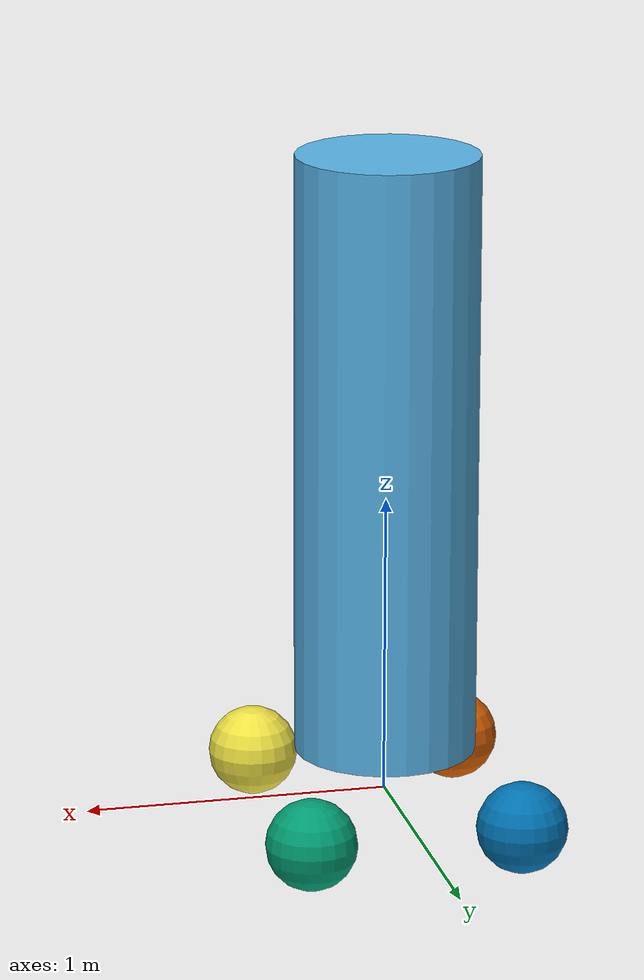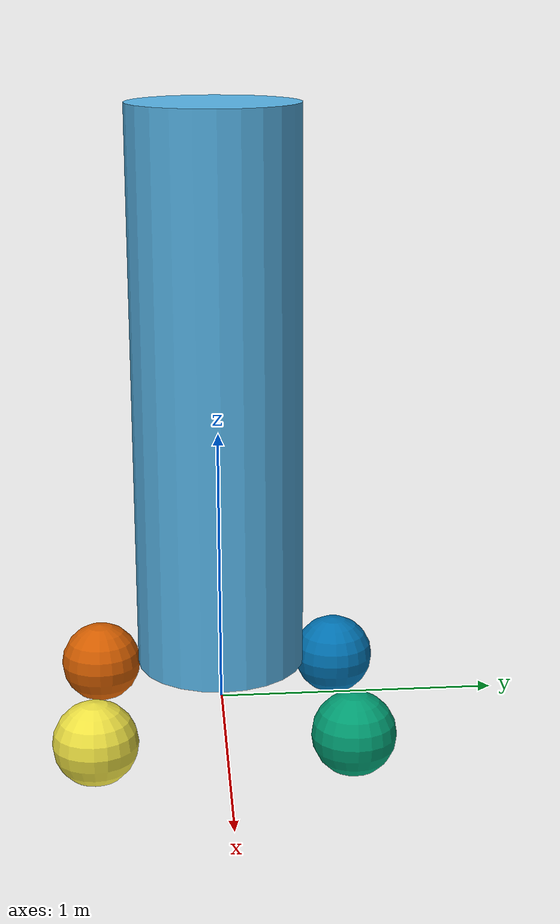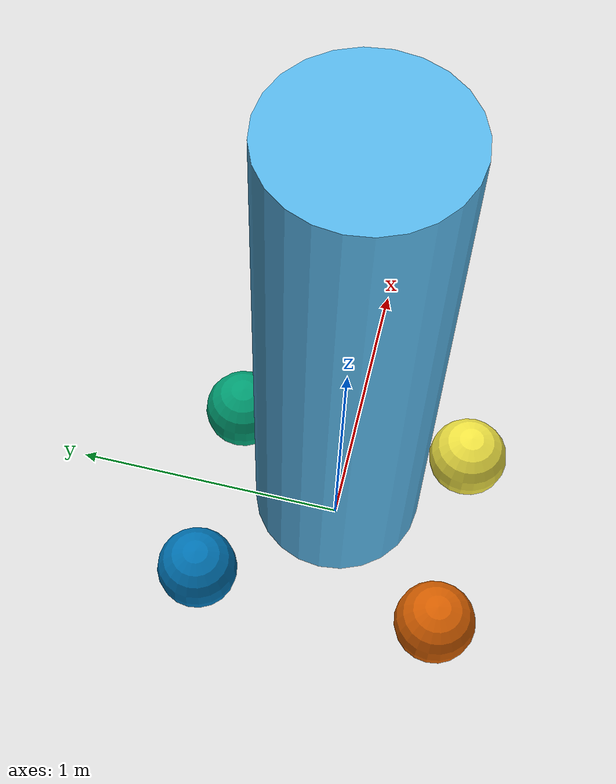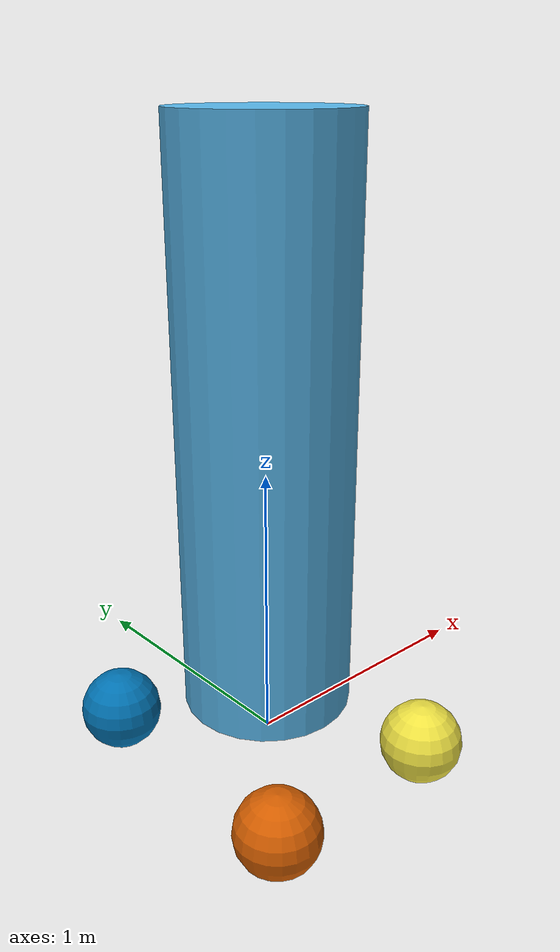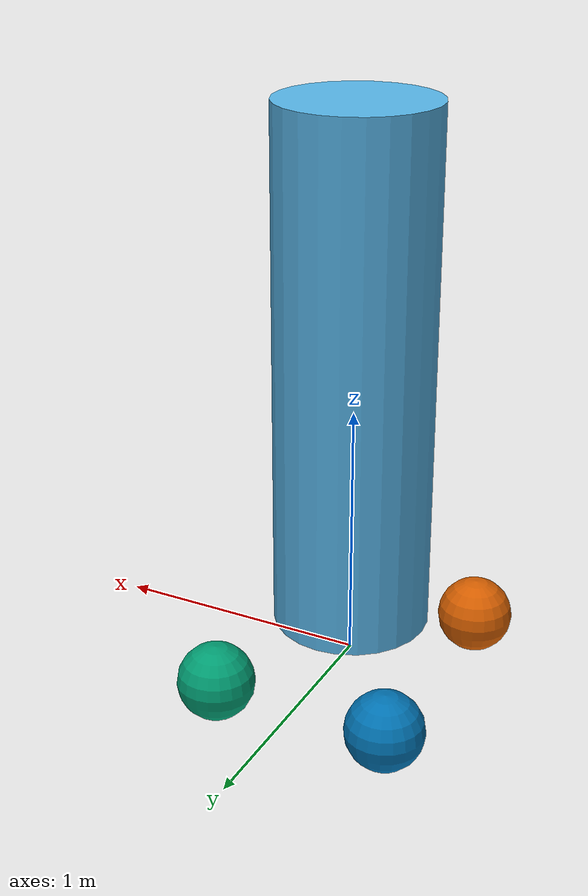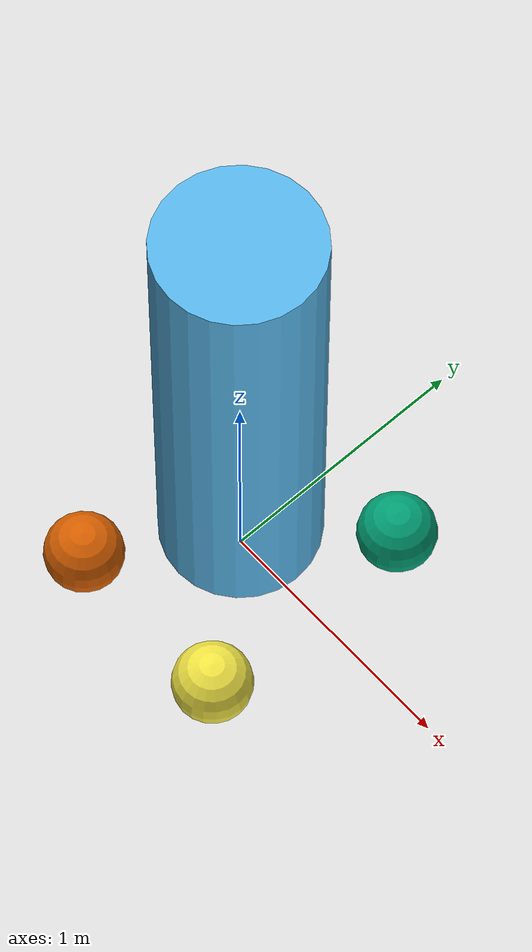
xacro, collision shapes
<?xml version="1.0"?>
<robot name="person_walking" xmlns:xacro="http://www.ros.org/wiki/xacro">
  <xacro:property name="person_mass" value="10.0" />
  <xacro:property name="person_height" value="2.0" />
  <xacro:property name="person_radius" value="0.3" />
  <xacro:property name="person_mesh" value="file://$(find lid_description)/meshes/person_walking/meshes/walking.dae" />

  <link name="base_footprint_person"/>

  <joint name="base_joint_person" type="fixed">
    <parent link="base_footprint_person"/>
    <child link="base_link_person"/>
    <!-- Elevate base_link so wheels rest flush on ground level -->
    <origin xyz="0 0 0.15" rpy="0 0 0"/>
  </joint>

  <link name="base_link_person">
    <inertial>
      <mass value="${person_mass}"/>
      <!-- Shift CoM down close to the base_link level instead of height/2 -->
      <origin xyz="0 0 0.1" rpy="0 0 0"/>
      <inertia ixx="1.0" ixy="0.0" ixz="0.0" iyy="1.0" iyz="0.0" izz="1.0"/>
    </inertial>

    <visual>
      <origin xyz="0 0 0" rpy="0 0 1.57"/>
      <geometry>
        <mesh filename="${person_mesh}" scale="1 1 1"/>
      </geometry>
    </visual>

    <!-- Visual person body collision omitted or simplified to avoid ground clipping -->
    <collision>
      <origin xyz="0 0 ${person_height / 2.0}" rpy="0 0 1.57"/>
      <geometry>
        <cylinder radius="${person_radius}" length="${person_height}"/>
      </geometry>
    </collision>
  </link>

  <!-- 4-WHEEL MACRO DEFINITION                       -->
  <xacro:macro name="fake_wheel" params="prefix x_offset y_offset">
    <link name="${prefix}_wheel">
      <inertial>
        <mass value="0.5"/>
        <origin xyz="0 0 0" rpy="0 0 0"/>
        <inertia ixx="0.001" ixy="0.0" ixz="0.0" iyy="0.001" iyz="0.0" izz="0.001"/>
      </inertial>
      <!-- Invisible collision sphere for physics -->
      <collision>
        <origin xyz="0 0 0" rpy="0 0 0"/>
        <geometry>
          <sphere radius="0.15"/>
        </geometry>
        <surface>
          <friction>
            <ode>
              <mu>0.2</mu>
              <mu2>0.2</mu2>
            </ode>
          </friction>
        </surface>
      </collision>
    </link>

    <joint name="${prefix}_joint" type="continuous">
      <parent link="base_link_person"/>
      <child link="${prefix}_wheel"/>
      <!-- Wheel center is 0.15m below base_link_person to reach ground (z=0) -->
      <origin xyz="${x_offset} ${y_offset} -0.15" rpy="0 0 0"/>
      <axis xyz="0 1 0"/>
    </joint>
  </xacro:macro>

  <!-- Instantiate 4 Fake Wheels (Front/Rear, Left/Right) -->
  <xacro:fake_wheel prefix="fl" x_offset="0.35" y_offset="0.45"/>
  <xacro:fake_wheel prefix="fr" x_offset="0.35" y_offset="-0.45"/>
  <xacro:fake_wheel prefix="rl" x_offset="-0.35" y_offset="0.45"/>
  <xacro:fake_wheel prefix="rr" x_offset="-0.35" y_offset="-0.45"/>

  <!-- GAZEBO PLUGINS                                 -->
  <gazebo>
    <!-- Diff Drive System (Configured for 4-wheel Skid Steer) -->
    <plugin filename="ignition-gazebo-diff-drive-system" name="ignition::gazebo::systems::DiffDrive">
      <!-- Left side wheels -->
      <left_joint>fl_joint</left_joint>
      <left_joint>rl_joint</left_joint>

      <!-- Right side wheels -->
      <right_joint>fr_joint</right_joint>
      <right_joint>rr_joint</right_joint>

      <!-- Kinematic dimensions -->
      <wheel_separation>0.90</wheel_separation>
      <wheel_radius>0.15</wheel_radius>

      <!-- Limits -->
      <max_linear_acceleration>3.20</max_linear_acceleration>
      <max_angular_acceleration>3.20</max_angular_acceleration>

      <topic>cmd_vel_person</topic>
      <odom_topic>/odom_person</odom_topic>
      <tf_topic>/tf_person</tf_topic>
      <frame_id>odom_person</frame_id>
      <child_frame_id>base_footprint_person</child_frame_id>
    </plugin>

    <!-- Joint State Publisher plugin for publishing wheel transforms -->
    <plugin filename="ignition-gazebo-joint-state-publisher-system" name="ignition::gazebo::systems::JointStatePublisher">
      <topic>/joint_states_person</topic>
    </plugin>
  </gazebo>

</robot>
